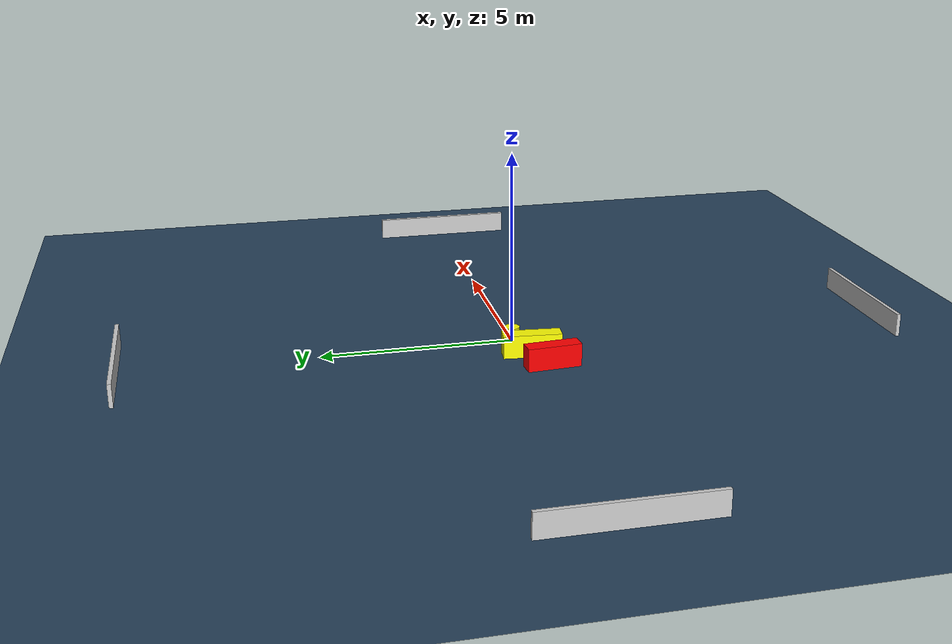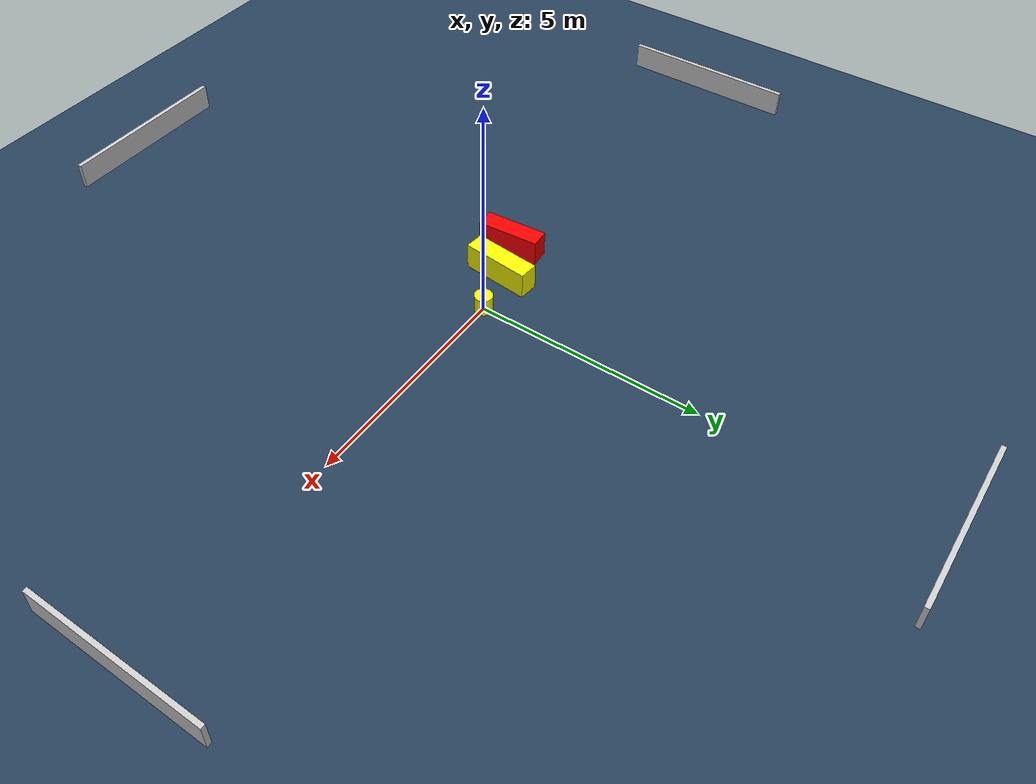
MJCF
<?xml version="1.0" ?>
<mujoco model="generated_environment">
  <option timestep="0.01" integrator="RK4" cone="elliptic"/>
  <default>
    <geom density="1"/>
  </default>
  <asset>
    <texture builtin="gradient" height="3072" name="skybox" rgb1="0.3 0.5 0.7" rgb2="0 0 0" type="skybox" width="512"/>
    <texture builtin="checker" height="300" name="groundplane" rgb1="0.2 0.3 0.4" rgb2="0.1 0.2 0.3" type="2d" width="300"/>
    <material name="groundplane" reflectance="0.2" texrepeat="5 5" texture="groundplane"/>
  </asset>
  <worldbody>
    <light dir="0 0 -1" directional="true" pos="0 0 1.5"/>
    <geom condim="3" friction="0.5 0.005 0.001" material="groundplane" name="floor" pos="0 0 0" size="0 0 0.05" type="plane"/>
    <body name="walls">
      <geom name="wall_1" condim="4" pos="-10.0 0.0 0.3" rgba="0.800000011920929 0.800000011920929 0.800000011920929 1.0" size="0.05 2.0 0.3" type="box"/>
      <geom name="wall_2" condim="4" pos="10.0 0.0 0.3" rgba="0.800000011920929 0.800000011920929 0.800000011920929 1.0" size="0.05 2.0 0.3" type="box"/>
      <geom name="wall_3" condim="4" pos="0.0 -10.0 0.3" rgba="0.800000011920929 0.800000011920929 0.800000011920929 1.0" size="2.0 0.05 0.3" type="box"/>
      <geom name="wall_4" condim="4" pos="0.0 10.0 0.3" rgba="0.800000011920929 0.800000011920929 0.800000011920929 1.0" size="2.0 0.05 0.3" type="box"/>
    </body>
    <body name="robot">
      <joint name="joint_x" type="slide" pos="0 0 0" axis="1 0 0"/>
      <joint name="joint_y" type="slide" pos="0 0 0" axis="0 1 0"/>
      <geom name="robot" type="cylinder" pos="0.0 0.0 0.2" size="0.2 0.2 0.0" mass="5.0" friction="1.0 0.005 0.0001" condim="4" rgba="1.0 1.0 0.0 1.0"/>
    </body>
    <body name="obstacle_1_movable">
      <geom name="obstacle_1_movable" condim="4" pos="-1.0354353633987878 -0.2738892143321297 0.3" euler="0 0 84.48904350900915" friction="0.0 0.005 0.001" rgba="1.0 1.0 0.0 1.0" size="0.753677579304378 0.2165219130023679 0.3" type="box" mass="0.1"/>
      <joint type="free"/>
    </body>
    <body name="obstacle_2_static">
      <geom name="obstacle_2_static" condim="4" pos="-1.909025900978591 -0.5881332672695954 0.3" euler="0 0 274.34728295537514" friction="0.0 0.005 0.001" rgba="1.0 0.0 0.0 1.0" size="0.6953374737745763 0.21170608600580898 0.3" type="box"/>
    </body>
  </worldbody>
  <actuator>
    <motor name="actuator_x" joint="joint_x" gear="1" ctrlrange="-1 1"/>
    <motor name="actuator_y" joint="joint_y" gear="1" ctrlrange="-1 1"/>
  </actuator>
</mujoco>
